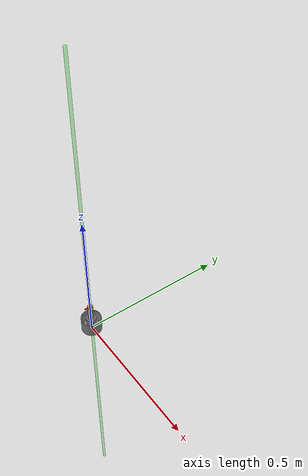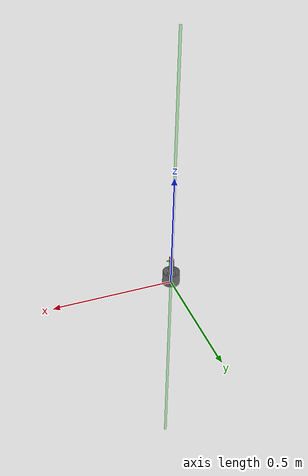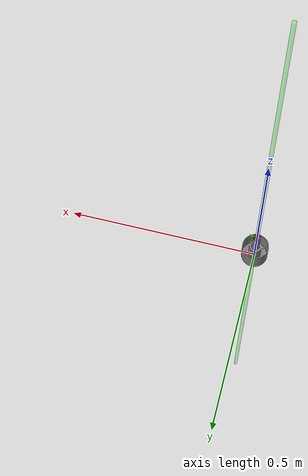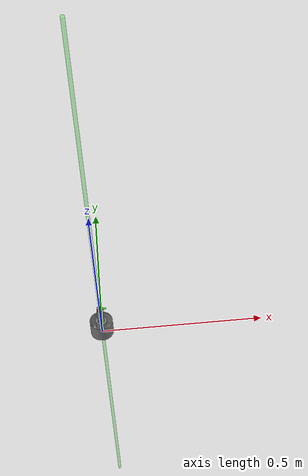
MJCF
<mujoco model="grinder">
    <asset>
        <mesh name="pestle" file="meshes/ur5e_soft_jig/pestle.stl" scale="1 1 1"/>
        <mesh name="pestle_cage" file="meshes/ur5e_soft_jig/pestle_cage.stl" scale="1 1 1"/>
        <material name="sapphire_glass"
            rgba="0.15 0.3 0.7 0.7"
            specular="1"
            shininess="0.95"
            reflectance="0.85"/>
     </asset>
    <worldbody>
        <body name="pestle_body" pos="0 0 0" quat="0.707107 0 0 -0.707107">
            <site name="ft_frame" pos="0 0 0" size="0.01 0.01 0.01" rgba="1 0 0 1" type="sphere" group="1"/>
            <inertial pos="0 0 0.17" quat="0.707107 0.707107 0 0" mass="0.3" diaginertia="0.09 0.07 0.05" />

            <geom quat="0.707107 0 0 0.707107" type="capsule" size="0.01" fromto="0 0 0.04 0 0 0.1025" name="pestle_visualisation" group="1" material="sapphire_glass"/>
            <geom quat="0.707107 0 0 0.707107" type="capsule" size="0.01" fromto="0 0 0.04 0 0 0.1025" name="pestle_collision" group="0" solimp="0.998 0.998 0.001" solref="0.001 1" density="50" friction="0.95 0.3 0.1"/>

            <geom pos="0 0 0" quat="0.707107 0 0 0.707107" type="mesh" mesh="pestle_cage"  group="0" name="pestle_cage_collision" solimp="0.998 0.998 0.001" solref="0.001 1" density="50" friction="0.95 0.3 0.1"/>
            <geom pos="0 0 0" quat="0.707107 0 0 0.707107" type="mesh" mesh="pestle_cage"  group="1" name="pestle_cage_visualisation"/>

            <!-- This site was added for visualization. -->
            <body name="eef" pos="0 0 0.1125" quat="1 0 0 0">
                <site name="grip_site" pos="0 0 0.0" size="0.01 0.01 0.01" rgba="1 0 0 0.5" type="sphere" group="1"/>
                <site name="ee_x" pos="0.01 0 0" size="0.0025 .01"  quat="0.707105  0 0.707108 0 " rgba="1 0 0 1" type="cylinder" group="1"/>
                <site name="ee_y" pos="0 0.01 0" size="0.0025 .01" quat="0.707105 0.707108 0 0" rgba="0 1 0 1" type="cylinder" group="1"/>
                <site name="ee_z" pos="0 0 0.01" size="0.0025 .01" quat="1 0 0 0" rgba="0 0 1 1" type="cylinder" group="1"/>
                <!-- This site was added for visualization. -->
                <site name="grip_site_cylinder" pos="0 0 0" size="0.005 1" rgba="0 1 0 0.3" type="cylinder" group="1"/>
            </body>
        </body>
    </worldbody>
    <sensor>
        <force name="force_ee" site="ft_frame"/>
        <torque name="torque_ee" site="ft_frame"/>
    </sensor>
</mujoco>
